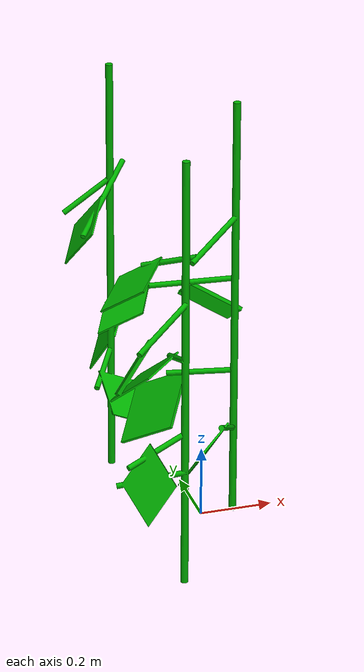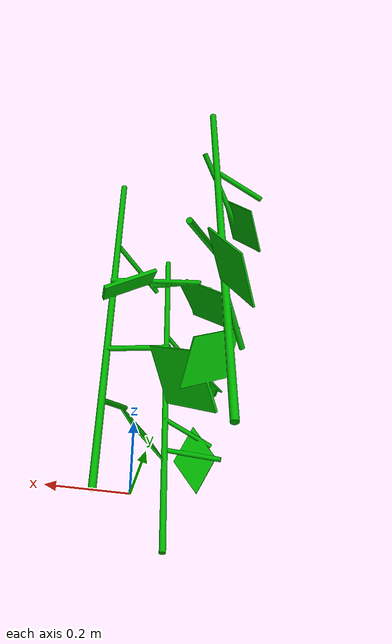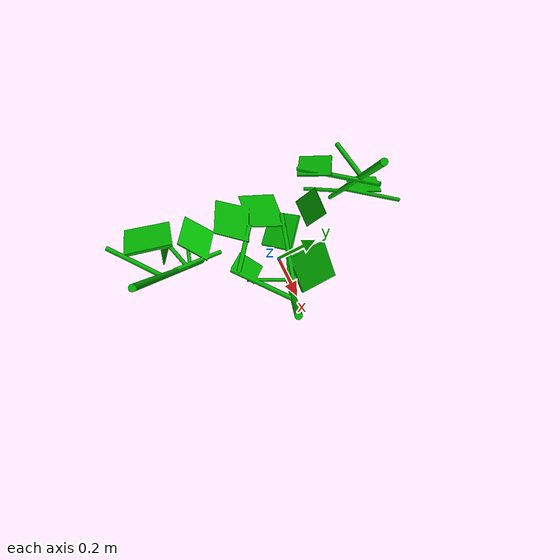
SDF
<?xml version="1.0" ?>
<sdf version="1.6">
  <model name="abstract_plant">
    <static>true</static>

    <link name="plant_link">
      <!-- collision -->
      <collision name="collision">
        <geometry>
            <mesh>
            <uri>model://abstract_plant/meshes/abstract_plant.dae</uri>
            </mesh>
            <scale>1 1 1</scale>
        </geometry>
      </collision>

      <!-- visual -->
    <visual name="visual">
        <geometry>
            <mesh>
            <uri>model://abstract_plant/meshes/abstract_plant.dae</uri>
            </mesh>
            <scale>1 1 1</scale>
        </geometry>

        <material>
            <ambient>0 0.7 0 1</ambient>
            <diffuse>0 0.7 0 1</diffuse>
            <specular>0.1 0.1 0.1 1</specular>
        </material>
    </visual>

    </link>
  </model>
</sdf>
